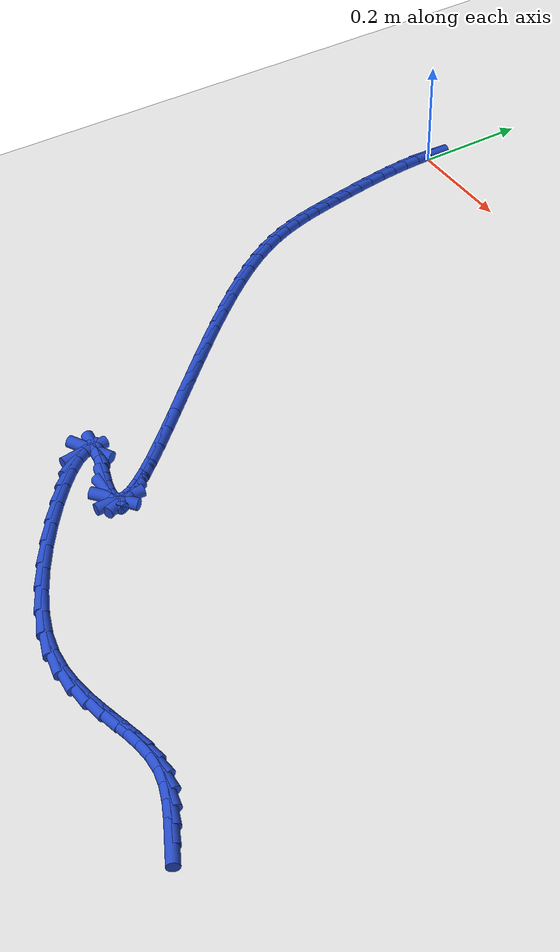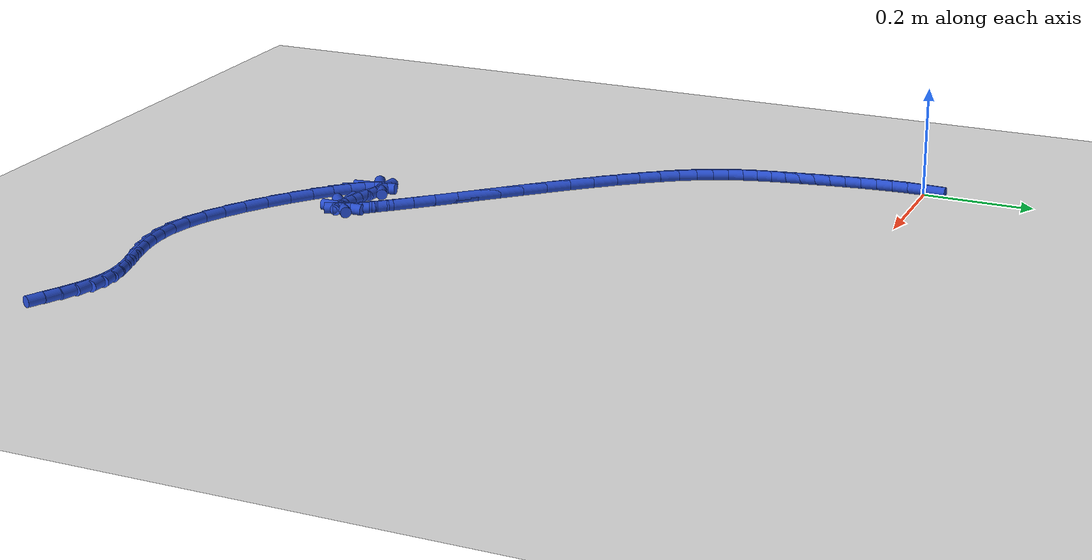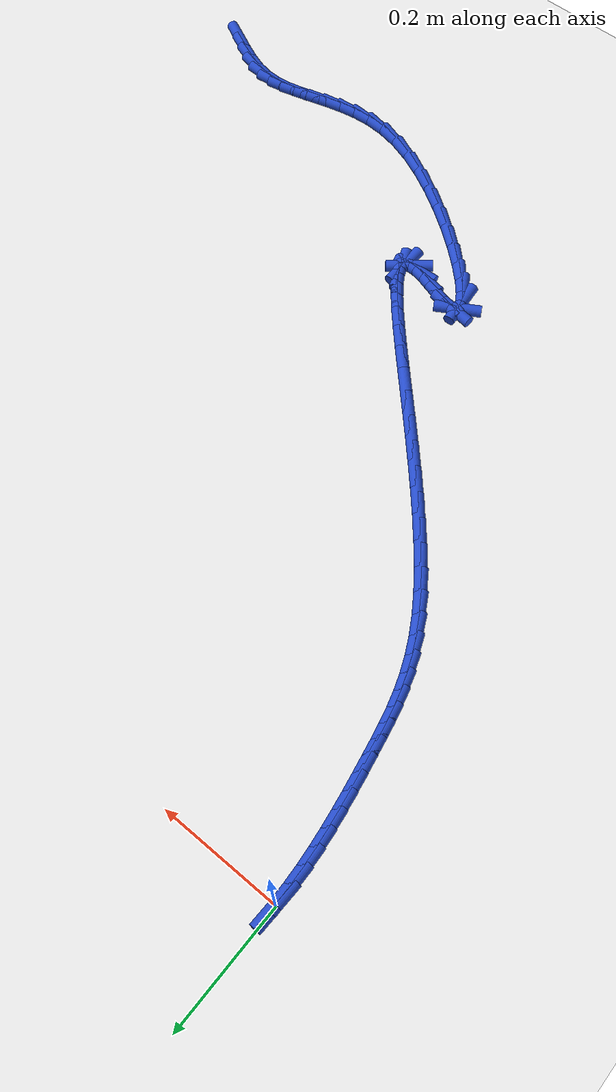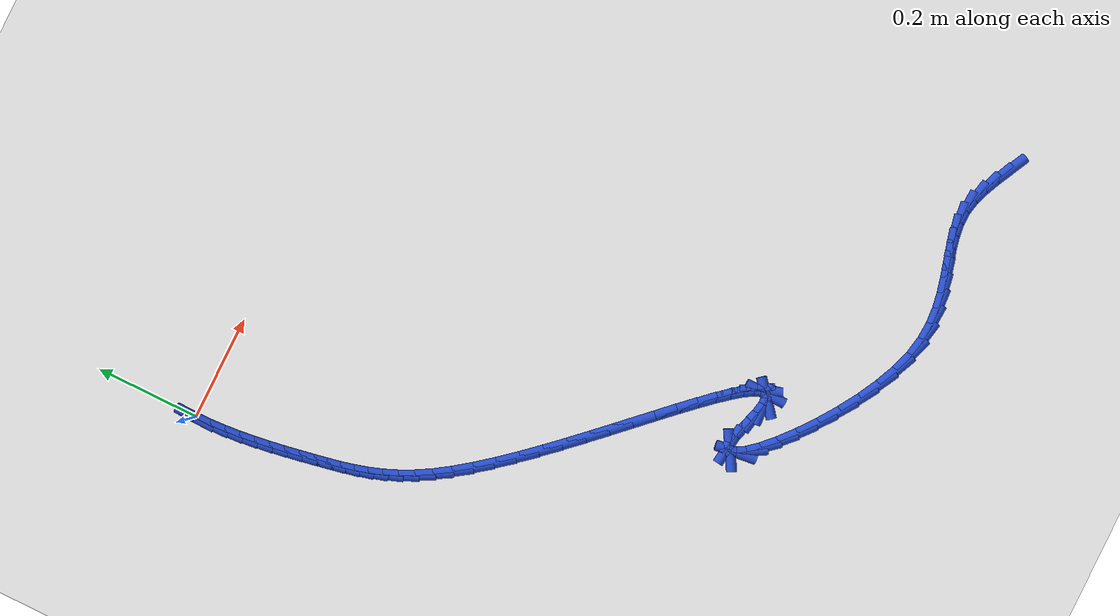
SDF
<sdf version="1.6">
 <world name="default">
  <model name="ground_plane">
   <static>1</static>
   <link name="link">
    <collision name="collision">
     <geometry><plane><normal>0 0 1</normal><size>100 100</size></plane></geometry>
     <surface><friction><ode><mu>100</mu><mu2>50</mu2></ode></friction></surface>
    </collision>
    <visual name="visual">
     <cast_shadows>0</cast_shadows>
     <geometry><plane><normal>0 0 1</normal><size>100 100</size></plane></geometry>
     <material>
      <script><uri>file://media/materials/scripts/gazebo.material</uri><name>Gazebo/WhiteGlow</name></script>
     </material>
    </visual>
   </link>
  </model>
  <model name="line">
   <link name="link_0">
    <pose>8.673617379884035e-18 -6.938893903907228e-18 0.01 0 1.57 1.5409718841521143</pose>
    <collision name="collision">
     <geometry><cylinder><radius>0.01</radius><length>0.08</length></cylinder></geometry>
    </collision>
    <visual name="visual">
     <material>
      <script><name>Gazebo/Blue</name><uri>file://media/materials/scripts/gazebo.material</uri></script>
     </material>
     <geometry><cylinder><radius>0.01</radius><length>0.08</length></cylinder></geometry>
    </visual>
   </link>
   <link name="link_204">
    <pose>1.0706540833297433 -1.1455623168918463 0.01 0 1.57 -0.4642319237247657</pose>
    <collision name="collision">
     <geometry><cylinder><radius>0.01</radius><length>0.08</length></cylinder></geometry>
    </collision>
    <visual name="visual">
     <material>
      <script><name>Gazebo/Blue</name><uri>file://media/materials/scripts/gazebo.material</uri></script>
     </material>
     <geometry><cylinder><radius>0.01</radius><length>0.08</length></cylinder></geometry>
    </visual>
   </link>
   <link name="link_205">
    <pose>1.044580691470846 -1.1325065715613485 0.01 0 1.57 -0.4228738818961201</pose>
    <collision name="collision">
     <geometry><cylinder><radius>0.01</radius><length>0.08</length></cylinder></geometry>
    </collision>
    <visual name="visual">
     <material>
      <script><name>Gazebo/Blue</name><uri>file://media/materials/scripts/gazebo.material</uri></script>
     </material>
     <geometry><cylinder><radius>0.01</radius><length>0.08</length></cylinder></geometry>
    </visual>
   </link>
   <link name="link_206">
    <pose>1.0190140620957948 -1.1210009748196406 0.01 0 1.57 -0.33830101584776473</pose>
    <collision name="collision">
     <geometry><cylinder><radius>0.01</radius><length>0.08</length></cylinder></geometry>
    </collision>
    <visual name="visual">
     <material>
      <script><name>Gazebo/Blue</name><uri>file://media/materials/scripts/gazebo.material</uri></script>
     </material>
     <geometry><cylinder><radius>0.01</radius><length>0.08</length></cylinder></geometry>
    </visual>
   </link>
   <link name="link_207">
    <pose>0.9938486394346454 -1.1121471135852172 0.01 0 1.57 -0.20228904150804633</pose>
    <collision name="collision">
     <geometry><cylinder><radius>0.01</radius><length>0.08</length></cylinder></geometry>
    </collision>
    <visual name="visual">
     <material>
      <script><name>Gazebo/Blue</name><uri>file://media/materials/scripts/gazebo.material</uri></script>
     </material>
     <geometry><cylinder><radius>0.01</radius><length>0.08</length></cylinder></geometry>
    </visual>
   </link>
   <link name="link_208">
    <pose>0.9689788595536176 -1.1070464647997955 0.01 0 1.57 -0.027776827403658392</pose>
    <collision name="collision">
     <geometry><cylinder><radius>0.01</radius><length>0.08</length></cylinder></geometry>
    </collision>
    <visual name="visual">
     <material>
      <script><name>Gazebo/Blue</name><uri>file://media/materials/scripts/gazebo.material</uri></script>
     </material>
     <geometry><cylinder><radius>0.01</radius><length>0.08</length></cylinder></geometry>
    </visual>
   </link>
   <link name="link_209">
    <pose>0.9442664480470282 -1.1063598558166883 0.01 0 1.57 0.1182348919394811</pose>
    <collision name="collision">
     <geometry><cylinder><radius>0.01</radius><length>0.08</length></cylinder></geometry>
    </collision>
    <visual name="visual">
     <material>
      <script><name>Gazebo/Blue</name><uri>file://media/materials/scripts/gazebo.material</uri></script>
     </material>
     <geometry><cylinder><radius>0.01</radius><length>0.08</length></cylinder></geometry>
    </visual>
   </link>
   <link name="link_210">
    <pose>0.9194660690442659 -1.1093058666685658 0.01 0 1.57 0.21535118865208316</pose>
    <collision name="collision">
     <geometry><cylinder><radius>0.01</radius><length>0.08</length></cylinder></geometry>
    </collision>
    <visual name="visual">
     <material>
      <script><name>Gazebo/Blue</name><uri>file://media/materials/scripts/gazebo.material</uri></script>
     </material>
     <geometry><cylinder><radius>0.01</radius><length>0.08</length></cylinder></geometry>
    </visual>
   </link>
   <link name="link_211">
    <pose>0.8943105174099861 -1.1148084719623068 0.01 0 1.57 0.26454808055251183</pose>
    <collision name="collision">
     <geometry><cylinder><radius>0.01</radius><length>0.08</length></cylinder></geometry>
    </collision>
    <visual name="visual">
     <material>
      <script><name>Gazebo/Blue</name><uri>file://media/materials/scripts/gazebo.material</uri></script>
     </material>
     <geometry><cylinder><radius>0.01</radius><length>0.08</length></cylinder></geometry>
    </visual>
   </link>
   <link name="link_212">
    <pose>0.868532588008847 -1.1217916463047883 0.01 0 1.57 0.2702530988167434</pose>
    <collision name="collision">
     <geometry><cylinder><radius>0.01</radius><length>0.08</length></cylinder></geometry>
    </collision>
    <visual name="visual">
     <material>
      <script><name>Gazebo/Blue</name><uri>file://media/materials/scripts/gazebo.material</uri></script>
     </material>
     <geometry><cylinder><radius>0.01</radius><length>0.08</length></cylinder></geometry>
    </visual>
   </link>
   <link name="link_213">
    <pose>0.8418650757055044 -1.129179364302891 0.01 0 1.57 0.2368496382804075</pose>
    <collision name="collision">
     <geometry><cylinder><radius>0.01</radius><length>0.08</length></cylinder></geometry>
    </collision>
    <visual name="visual">
     <material>
      <script><name>Gazebo/Blue</name><uri>file://media/materials/scripts/gazebo.material</uri></script>
     </material>
     <geometry><cylinder><radius>0.01</radius><length>0.08</length></cylinder></geometry>
    </visual>
   </link>
   <link name="link_214">
    <pose>0.8140407753646165 -1.1358956005634906 0.01 0 1.57 0.1682744900503131</pose>
    <collision name="collision">
     <geometry><cylinder><radius>0.01</radius><length>0.08</length></cylinder></geometry>
    </collision>
    <visual name="visual">
     <material>
      <script><name>Gazebo/Blue</name><uri>file://media/materials/scripts/gazebo.material</uri></script>
     </material>
     <geometry><cylinder><radius>0.01</radius><length>0.08</length></cylinder></geometry>
    </visual>
   </link>
   <link name="link_215">
    <pose>0.7847924818508395 -1.140864329693467 0.01 0 1.57 0.06922443694624249</pose>
    <collision name="collision">
     <geometry><cylinder><radius>0.01</radius><length>0.08</length></cylinder></geometry>
    </collision>
    <visual name="visual">
     <material>
      <script><name>Gazebo/Blue</name><uri>file://media/materials/scripts/gazebo.material</uri></script>
     </material>
     <geometry><cylinder><radius>0.01</radius><length>0.08</length></cylinder></geometry>
    </visual>
   </link>
   <link name="link_216">
    <pose>0.7538529900288291 -1.143009526299698 0.01 0 1.57 -0.05327699842313205</pose>
    <collision name="collision">
     <geometry><cylinder><radius>0.01</radius><length>0.08</length></cylinder></geometry>
    </collision>
    <visual name="visual">
     <material>
      <script><name>Gazebo/Blue</name><uri>file://media/materials/scripts/gazebo.material</uri></script>
     </material>
     <geometry><cylinder><radius>0.01</radius><length>0.08</length></cylinder></geometry>
    </visual>
   </link>
   <link name="link_217">
    <pose>0.7209550947632444 -1.1412551649890612 0.01 0 1.57 -0.18931346870552138</pose>
    <collision name="collision">
     <geometry><cylinder><radius>0.01</radius><length>0.08</length></cylinder></geometry>
    </collision>
    <visual name="visual">
     <material>
      <script><name>Gazebo/Blue</name><uri>file://media/materials/scripts/gazebo.material</uri></script>
     </material>
     <geometry><cylinder><radius>0.01</radius><length>0.08</length></cylinder></geometry>
    </visual>
   </link>
   <link name="link_218">
    <pose>0.6858315909430144 -1.134525220407173 0.01 0 1.57 -0.32052352537030293</pose>
    <collision name="collision">
     <geometry><cylinder><radius>0.01</radius><length>0.08</length></cylinder></geometry>
    </collision>
    <visual name="visual">
     <material>
      <script><name>Gazebo/Blue</name><uri>file://media/materials/scripts/gazebo.material</uri></script>
     </material>
     <geometry><cylinder><radius>0.01</radius><length>0.08</length></cylinder></geometry>
    </visual>
   </link>
   <link name="link_219">
    <pose>0.648447933904678 -1.1221149481736779 0.01 0 1.57 -0.4204650354942091</pose>
    <collision name="collision">
     <geometry><cylinder><radius>0.01</radius><length>0.08</length></cylinder></geometry>
    </collision>
    <visual name="visual">
     <material>
      <script><name>Gazebo/Blue</name><uri>file://media/materials/scripts/gazebo.material</uri></script>
     </material>
     <geometry><cylinder><radius>0.01</radius><length>0.08</length></cylinder></geometry>
    </visual>
   </link>
   <link name="link_220">
    <pose>0.609687108644149 -1.1047838033849318 0.01 0 1.57 -0.4962452115851654</pose>
    <collision name="collision">
     <geometry><cylinder><radius>0.01</radius><length>0.08</length></cylinder></geometry>
    </collision>
    <visual name="visual">
     <material>
      <script><name>Gazebo/Blue</name><uri>file://media/materials/scripts/gazebo.material</uri></script>
     </material>
     <geometry><cylinder><radius>0.01</radius><length>0.08</length></cylinder></geometry>
    </visual>
   </link>
   <link name="link_221">
    <pose>0.5706582505945622 -1.083652133396682 0.01 0 1.57 -0.5575535435597293</pose>
    <collision name="collision">
     <geometry><cylinder><radius>0.01</radius><length>0.08</length></cylinder></geometry>
    </collision>
    <visual name="visual">
     <material>
      <script><name>Gazebo/Blue</name><uri>file://media/materials/scripts/gazebo.material</uri></script>
     </material>
     <geometry><cylinder><radius>0.01</radius><length>0.08</length></cylinder></geometry>
    </visual>
   </link>
   <link name="link_222">
    <pose>0.5324704951890482 -1.0598402855646736 0.01 0 1.57 -0.6108262684942622</pose>
    <collision name="collision">
     <geometry><cylinder><radius>0.01</radius><length>0.08</length></cylinder></geometry>
    </collision>
    <visual name="visual">
     <material>
      <script><name>Gazebo/Blue</name><uri>file://media/materials/scripts/gazebo.material</uri></script>
     </material>
     <geometry><cylinder><radius>0.01</radius><length>0.08</length></cylinder></geometry>
    </visual>
   </link>
   <link name="link_223">
    <pose>0.49623297786074194 -1.0344686072446547 0.01 0 1.57 -0.6611546823411534</pose>
    <collision name="collision">
     <geometry><cylinder><radius>0.01</radius><length>0.08</length></cylinder></geometry>
    </collision>
    <visual name="visual">
     <material>
      <script><name>Gazebo/Blue</name><uri>file://media/materials/scripts/gazebo.material</uri></script>
     </material>
     <geometry><cylinder><radius>0.01</radius><length>0.08</length></cylinder></geometry>
    </visual>
   </link>
   <link name="link_224">
    <pose>0.463054834042774 -1.00865744579237 0.01 0 1.57 -0.7138665107313322</pose>
    <collision name="collision">
     <geometry><cylinder><radius>0.01</radius><length>0.08</length></cylinder></geometry>
    </collision>
    <visual name="visual">
     <material>
      <script><name>Gazebo/Blue</name><uri>file://media/materials/scripts/gazebo.material</uri></script>
     </material>
     <geometry><cylinder><radius>0.01</radius><length>0.08</length></cylinder></geometry>
    </visual>
   </link>
   <link name="link_225">
    <pose>0.43404519916827883 -0.9835271485635673 0.01 0 1.57 -0.7768370543464801</pose>
    <collision name="collision">
     <geometry><cylinder><radius>0.01</radius><length>0.08</length></cylinder></geometry>
    </collision>
    <visual name="visual">
     <material>
      <script><name>Gazebo/Blue</name><uri>file://media/materials/scripts/gazebo.material</uri></script>
     </material>
     <geometry><cylinder><radius>0.01</radius><length>0.08</length></cylinder></geometry>
    </visual>
   </link>
   <link name="link_226">
    <pose>0.4103132086703884 -0.9601980629139923 0.01 0 1.57 -0.8663360317413118</pose>
    <collision name="collision">
     <geometry><cylinder><radius>0.01</radius><length>0.08</length></cylinder></geometry>
    </collision>
    <visual name="visual">
     <material>
      <script><name>Gazebo/Blue</name><uri>file://media/materials/scripts/gazebo.material</uri></script>
     </material>
     <geometry><cylinder><radius>0.01</radius><length>0.08</length></cylinder></geometry>
    </visual>
   </link>
   <link name="link_227">
    <pose>0.39296799798223464 -0.9397905361993909 0.01 0 1.57 -1.029033486125256</pose>
    <collision name="collision">
     <geometry><cylinder><radius>0.01</radius><length>0.08</length></cylinder></geometry>
    </collision>
    <visual name="visual">
     <material>
      <script><name>Gazebo/Blue</name><uri>file://media/materials/scripts/gazebo.material</uri></script>
     </material>
     <geometry><cylinder><radius>0.01</radius><length>0.08</length></cylinder></geometry>
    </visual>
   </link>
   <link name="link_228">
    <pose>0.38311870253695157 -0.9234249157755104 0.01 0 1.57 -1.4601896946669406</pose>
    <collision name="collision">
     <geometry><cylinder><radius>0.01</radius><length>0.08</length></cylinder></geometry>
    </collision>
    <visual name="visual">
     <material>
      <script><name>Gazebo/Blue</name><uri>file://media/materials/scripts/gazebo.material</uri></script>
     </material>
     <geometry><cylinder><radius>0.01</radius><length>0.08</length></cylinder></geometry>
    </visual>
   </link>
   <link name="link_229">
    <pose>0.3818744577676711 -0.9122215489980967 0.01 0 1.57 0.5263079022727691</pose>
    <collision name="collision">
     <geometry><cylinder><radius>0.01</radius><length>0.08</length></cylinder></geometry>
    </collision>
    <visual name="visual">
     <material>
      <script><name>Gazebo/Blue</name><uri>file://media/materials/scripts/gazebo.material</uri></script>
     </material>
     <geometry><cylinder><radius>0.01</radius><length>0.08</length></cylinder></geometry>
    </visual>
   </link>
   <link name="link_230">
    <pose>0.39034439910752616 -0.9073007832228964 0.01 0 1.57 -0.12695476237906597</pose>
    <collision name="collision">
     <geometry><cylinder><radius>0.01</radius><length>0.08</length></cylinder></geometry>
    </collision>
    <visual name="visual">
     <material>
      <script><name>Gazebo/Blue</name><uri>file://media/materials/scripts/gazebo.material</uri></script>
     </material>
     <geometry><cylinder><radius>0.01</radius><length>0.08</length></cylinder></geometry>
    </visual>
   </link>
   <link name="link_231">
    <pose>0.4096044559877209 -0.9097591610252957 0.01 0 1.57 -0.2966005531450414</pose>
    <collision name="collision">
     <geometry><cylinder><radius>0.01</radius><length>0.08</length></cylinder></geometry>
    </collision>
    <visual name="visual">
     <material>
      <script><name>Gazebo/Blue</name><uri>file://media/materials/scripts/gazebo.material</uri></script>
     </material>
     <geometry><cylinder><radius>0.01</radius><length>0.08</length></cylinder></geometry>
    </visual>
   </link>
   <link name="link_232">
    <pose>0.4372742887122776 -0.9182154883469865 0.01 0 1.57 -0.30112780114378235</pose>
    <collision name="collision">
     <geometry><cylinder><radius>0.01</radius><length>0.08</length></cylinder></geometry>
    </collision>
    <visual name="visual">
     <material>
      <script><name>Gazebo/Blue</name><uri>file://media/materials/scripts/gazebo.material</uri></script>
     </material>
     <geometry><cylinder><radius>0.01</radius><length>0.08</length></cylinder></geometry>
    </visual>
   </link>
   <link name="link_233">
    <pose>0.4645586916355789 -0.9266892708618514 0.01 0 1.57 -0.19305845136438265</pose>
    <collision name="collision">
     <geometry><cylinder><radius>0.01</radius><length>0.08</length></cylinder></geometry>
    </collision>
    <visual name="visual">
     <material>
      <script><name>Gazebo/Blue</name><uri>file://media/materials/scripts/gazebo.material</uri></script>
     </material>
     <geometry><cylinder><radius>0.01</radius><length>0.08</length></cylinder></geometry>
    </visual>
   </link>
   <link name="link_234">
    <pose>0.48485623962167546 -0.9306573052587689 0.01 0 1.57 0.05994871519408383</pose>
    <collision name="collision">
     <geometry><cylinder><radius>0.01</radius><length>0.08</length></cylinder></geometry>
    </collision>
    <visual name="visual">
     <material>
      <script><name>Gazebo/Blue</name><uri>file://media/materials/scripts/gazebo.material</uri></script>
     </material>
     <geometry><cylinder><radius>0.01</radius><length>0.08</length></cylinder></geometry>
    </visual>
   </link>
   <link name="link_235">
    <pose>0.49788570229031676 -0.9298752686472246 0.01 0 1.57 0.6900211152007061</pose>
    <collision name="collision">
     <geometry><cylinder><radius>0.01</radius><length>0.08</length></cylinder></geometry>
    </collision>
    <visual name="visual">
     <material>
      <script><name>Gazebo/Blue</name><uri>file://media/materials/scripts/gazebo.material</uri></script>
     </material>
     <geometry><cylinder><radius>0.01</radius><length>0.08</length></cylinder></geometry>
    </visual>
   </link>
   <link name="link_236">
    <pose>0.5042000360093922 -0.9246635968952098 0.01 0 1.57 1.5544730001162064</pose>
    <collision name="collision">
     <geometry><cylinder><radius>0.01</radius><length>0.08</length></cylinder></geometry>
    </collision>
    <visual name="visual">
     <material>
      <script><name>Gazebo/Blue</name><uri>file://media/materials/scripts/gazebo.material</uri></script>
     </material>
     <geometry><cylinder><radius>0.01</radius><length>0.08</length></cylinder></geometry>
    </visual>
   </link>
   <link name="link_237">
    <pose>0.5043521971467905 -0.9153427258707164 0.01 0 1.57 -1.1763492532491382</pose>
    <collision name="collision">
     <geometry><cylinder><radius>0.01</radius><length>0.08</length></cylinder></geometry>
    </collision>
    <visual name="visual">
     <material>
      <script><name>Gazebo/Blue</name><uri>file://media/materials/scripts/gazebo.material</uri></script>
     </material>
     <geometry><cylinder><radius>0.01</radius><length>0.08</length></cylinder></geometry>
    </visual>
   </link>
   <link name="link_238">
    <pose>0.49889514207040064 -0.9022330914417348 0.01 0 1.57 -1.0056270548196067</pose>
    <collision name="collision">
     <geometry><cylinder><radius>0.01</radius><length>0.08</length></cylinder></geometry>
    </collision>
    <visual name="visual">
     <material>
      <script><name>Gazebo/Blue</name><uri>file://media/materials/scripts/gazebo.material</uri></script>
     </material>
     <geometry><cylinder><radius>0.01</radius><length>0.08</length></cylinder></geometry>
    </visual>
   </link>
   <link name="link_239">
    <pose>0.48838182714811257 -0.8856551294762582 0.01 0 1.57 -0.9201239875598572</pose>
    <collision name="collision">
     <geometry><cylinder><radius>0.01</radius><length>0.08</length></cylinder></geometry>
    </collision>
    <visual name="visual">
     <material>
      <script><name>Gazebo/Blue</name><uri>file://media/materials/scripts/gazebo.material</uri></script>
     </material>
     <geometry><cylinder><radius>0.01</radius><length>0.08</length></cylinder></geometry>
    </visual>
   </link>
   <link name="link_240">
    <pose>0.47336520874781446 -0.8659292758422765 0.01 0 1.57 -0.8715600369598075</pose>
    <collision name="collision">
     <geometry><cylinder><radius>0.01</radius><length>0.08</length></cylinder></geometry>
    </collision>
    <visual name="visual">
     <material>
      <script><name>Gazebo/Blue</name><uri>file://media/materials/scripts/gazebo.material</uri></script>
     </material>
     <geometry><cylinder><radius>0.01</radius><length>0.08</length></cylinder></geometry>
    </visual>
   </link>
   <link name="link_241">
    <pose>0.4543982432373965 -0.8433759664077825 0.01 0 1.57 -0.8421845092491237</pose>
    <collision name="collision">
     <geometry><cylinder><radius>0.01</radius><length>0.08</length></cylinder></geometry>
    </collision>
    <visual name="visual">
     <material>
      <script><name>Gazebo/Blue</name><uri>file://media/materials/scripts/gazebo.material</uri></script>
     </material>
     <geometry><cylinder><radius>0.01</radius><length>0.08</length></cylinder></geometry>
    </visual>
   </link>
   <link name="link_242">
    <pose>0.43203388698474676 -0.8183156370407664 0.01 0 1.57 -0.8242327983363771</pose>
    <collision name="collision">
     <geometry><cylinder><radius>0.01</radius><length>0.08</length></cylinder></geometry>
    </collision>
    <visual name="visual">
     <material>
      <script><name>Gazebo/Blue</name><uri>file://media/materials/scripts/gazebo.material</uri></script>
     </material>
     <geometry><cylinder><radius>0.01</radius><length>0.08</length></cylinder></geometry>
    </visual>
   </link>
   <link name="link_243">
    <pose>0.4068250963577558 -0.7910687236092213 0.01 0 1.57 -0.8138783271246006</pose>
    <collision name="collision">
     <geometry><cylinder><radius>0.01</radius><length>0.08</length></cylinder></geometry>
    </collision>
    <visual name="visual">
     <material>
      <script><name>Gazebo/Blue</name><uri>file://media/materials/scripts/gazebo.material</uri></script>
     </material>
     <geometry><cylinder><radius>0.01</radius><length>0.08</length></cylinder></geometry>
    </visual>
   </link>
   <link name="link_244">
    <pose>0.37932482772431136 -0.7619556619811372 0.01 0 1.57 -0.809100592284232</pose>
    <collision name="collision">
     <geometry><cylinder><radius>0.01</radius><length>0.08</length></cylinder></geometry>
    </collision>
    <visual name="visual">
     <material>
      <script><name>Gazebo/Blue</name><uri>file://media/materials/scripts/gazebo.material</uri></script>
     </material>
     <geometry><cylinder><radius>0.01</radius><length>0.08</length></cylinder></geometry>
    </visual>
   </link>
   <link name="link_245">
    <pose>0.350086037452304 -0.7312968880245069 0.01 0 1.57 -0.8088208124405839</pose>
    <collision name="collision">
     <geometry><cylinder><radius>0.01</radius><length>0.08</length></cylinder></geometry>
    </collision>
    <visual name="visual">
     <material>
      <script><name>Gazebo/Blue</name><uri>file://media/materials/scripts/gazebo.material</uri></script>
     </material>
     <geometry><cylinder><radius>0.01</radius><length>0.08</length></cylinder></geometry>
    </visual>
   </link>
   <link name="link_246">
    <pose>0.31966168190962235 -0.6994128376073214 0.01 0 1.57 -0.8125181999689776</pose>
    <collision name="collision">
     <geometry><cylinder><radius>0.01</radius><length>0.08</length></cylinder></geometry>
    </collision>
    <visual name="visual">
     <material>
      <script><name>Gazebo/Blue</name><uri>file://media/materials/scripts/gazebo.material</uri></script>
     </material>
     <geometry><cylinder><radius>0.01</radius><length>0.08</length></cylinder></geometry>
    </visual>
   </link>
   <link name="link_247">
    <pose>0.28860471746415445 -0.6666239465975712 0.01 0 1.57 -0.8200561413777359</pose>
    <collision name="collision">
     <geometry><cylinder><radius>0.01</radius><length>0.08</length></cylinder></geometry>
    </collision>
    <visual name="visual">
     <material>
      <script><name>Gazebo/Blue</name><uri>file://media/materials/scripts/gazebo.material</uri></script>
     </material>
     <geometry><cylinder><radius>0.01</radius><length>0.08</length></cylinder></geometry>
    </visual>
   </link>
   <link name="link_248">
    <pose>0.2574681004837913 -0.6332506508632496 0.01 0 1.57 -0.8316160000851509</pose>
    <collision name="collision">
     <geometry><cylinder><radius>0.01</radius><length>0.08</length></cylinder></geometry>
    </collision>
    <visual name="visual">
     <material>
      <script><name>Gazebo/Blue</name><uri>file://media/materials/scripts/gazebo.material</uri></script>
     </material>
     <geometry><cylinder><radius>0.01</radius><length>0.08</length></cylinder></geometry>
    </visual>
   </link>
   <link name="link_249">
    <pose>0.22680478733642045 -0.5996133862723465 0.01 0 1.57 -0.8477008290284296</pose>
    <collision name="collision">
     <geometry><cylinder><radius>0.01</radius><length>0.08</length></cylinder></geometry>
    </collision>
    <visual name="visual">
     <material>
      <script><name>Gazebo/Blue</name><uri>file://media/materials/scripts/gazebo.material</uri></script>
     </material>
     <geometry><cylinder><radius>0.01</radius><length>0.08</length></cylinder></geometry>
    </visual>
   </link>
   <link name="link_250">
    <pose>0.19716773438993276 -0.566032588692855 0.01 0 1.57 -0.8692026094590409</pose>
    <collision name="collision">
     <geometry><cylinder><radius>0.01</radius><length>0.08</length></cylinder></geometry>
    </collision>
    <visual name="visual">
     <material>
      <script><name>Gazebo/Blue</name><uri>file://media/materials/scripts/gazebo.material</uri></script>
     </material>
     <geometry><cylinder><radius>0.01</radius><length>0.08</length></cylinder></geometry>
    </visual>
   </link>
   <link name="link_251">
    <pose>0.16910989801221574 -0.5328286939927648 0.01 0 1.57 -0.8975499501292011</pose>
    <collision name="collision">
     <geometry><cylinder><radius>0.01</radius><length>0.08</length></cylinder></geometry>
    </collision>
    <visual name="visual">
     <material>
      <script><name>Gazebo/Blue</name><uri>file://media/materials/scripts/gazebo.material</uri></script>
     </material>
     <geometry><cylinder><radius>0.01</radius><length>0.08</length></cylinder></geometry>
    </visual>
   </link>
   <link name="link_252">
    <pose>0.14318423457116 -0.5003221380400693 0.01 0 1.57 -0.9349822733542558</pose>
    <collision name="collision">
     <geometry><cylinder><radius>0.01</radius><length>0.08</length></cylinder></geometry>
    </collision>
    <visual name="visual">
     <material>
      <script><name>Gazebo/Blue</name><uri>file://media/materials/scripts/gazebo.material</uri></script>
     </material>
     <geometry><cylinder><radius>0.01</radius><length>0.08</length></cylinder></geometry>
    </visual>
   </link>
   <link name="link_253">
    <pose>0.11994370043465348 -0.4688333567027584 0.01 0 1.57 -0.9849540185109447</pose>
    <collision name="collision">
     <geometry><cylinder><radius>0.01</radius><length>0.08</length></cylinder></geometry>
    </collision>
    <visual name="visual">
     <material>
      <script><name>Gazebo/Blue</name><uri>file://media/materials/scripts/gazebo.material</uri></script>
     </material>
     <geometry><cylinder><radius>0.01</radius><length>0.08</length></cylinder></geometry>
    </visual>
   </link>
   <link name="link_254">
    <pose>0.09993463193976522 -0.4386788141721696 0.01 0 1.57 -1.0466728409601813</pose>
    <collision name="collision">
     <geometry><cylinder><radius>0.01</radius><length>0.08</length></cylinder></geometry>
    </collision>
    <visual name="visual">
     <material>
      <script><name>Gazebo/Blue</name><uri>file://media/materials/scripts/gazebo.material</uri></script>
     </material>
     <geometry><cylinder><radius>0.01</radius><length>0.08</length></cylinder></geometry>
    </visual>
   </link>
   <link name="link_255">
    <pose>0.08332770604040307 -0.40994959840760103 0.01 0 1.57 -1.1121878496065656</pose>
    <collision name="collision">
     <geometry><cylinder><radius>0.01</radius><length>0.08</length></cylinder></geometry>
    </collision>
    <visual name="visual">
     <material>
      <script><name>Gazebo/Blue</name><uri>file://media/materials/scripts/gazebo.material</uri></script>
     </material>
     <geometry><cylinder><radius>0.01</radius><length>0.08</length></cylinder></geometry>
    </visual>
   </link>
   <link name="link_256">
    <pose>0.06972338791938038 -0.382394699749623 0.01 0 1.57 -1.1779083431837105</pose>
    <collision name="collision">
     <geometry><cylinder><radius>0.01</radius><length>0.08</length></cylinder></geometry>
    </collision>
    <visual name="visual">
     <material>
      <script><name>Gazebo/Blue</name><uri>file://media/materials/scripts/gazebo.material</uri></script>
     </material>
     <geometry><cylinder><radius>0.01</radius><length>0.08</length></cylinder></geometry>
    </visual>
   </link>
   <link name="link_257">
    <pose>0.05867447526781418 -0.35573451050518456 0.01 0 1.57 -1.240122296660199</pose>
    <collision name="collision">
     <geometry><cylinder><radius>0.01</radius><length>0.08</length></cylinder></geometry>
    </collision>
    <visual name="visual">
     <material>
      <script><name>Gazebo/Blue</name><uri>file://media/materials/scripts/gazebo.material</uri></script>
     </material>
     <geometry><cylinder><radius>0.01</radius><length>0.08</length></cylinder></geometry>
    </visual>
   </link>
   <link name="link_258">
    <pose>0.0497337657768217 -0.3296894229812345 0.01 0 1.57 -1.2948676839931783</pose>
    <collision name="collision">
     <geometry><cylinder><radius>0.01</radius><length>0.08</length></cylinder></geometry>
    </collision>
    <visual name="visual">
     <material>
      <script><name>Gazebo/Blue</name><uri>file://media/materials/scripts/gazebo.material</uri></script>
     </material>
     <geometry><cylinder><radius>0.01</radius><length>0.08</length></cylinder></geometry>
    </visual>
   </link>
   <link name="link_259">
    <pose>0.04245405713752098 -0.3039798294847244 0.01 0 1.57 -1.3386073354871726</pose>
    <collision name="collision">
     <geometry><cylinder><radius>0.01</radius><length>0.08</length></cylinder></geometry>
    </collision>
    <visual name="visual">
     <material>
      <script><name>Gazebo/Blue</name><uri>file://media/materials/scripts/gazebo.material</uri></script>
     </material>
     <geometry><cylinder><radius>0.01</radius><length>0.08</length></cylinder></geometry>
    </visual>
   </link>
   <link name="link_260">
    <pose>0.03638814704102904 -0.27832612232260234 0.01 0 1.57 -1.3688038947188759</pose>
    <collision name="collision">
     <geometry><cylinder><radius>0.01</radius><length>0.08</length></cylinder></geometry>
    </collision>
    <visual name="visual">
     <material>
      <script><name>Gazebo/Blue</name><uri>file://media/materials/scripts/gazebo.material</uri></script>
     </material>
     <geometry><cylinder><radius>0.01</radius><length>0.08</length></cylinder></geometry>
    </visual>
   </link>
   <link name="link_261">
    <pose>0.03108883317846376 -0.2524486938018198 0.01 0 1.57 -1.3842372167997115</pose>
    <collision name="collision">
     <geometry><cylinder><radius>0.01</radius><length>0.08</length></cylinder></geometry>
    </collision>
    <visual name="visual">
     <material>
      <script><name>Gazebo/Blue</name><uri>file://media/materials/scripts/gazebo.material</uri></script>
     </material>
     <geometry><cylinder><radius>0.01</radius><length>0.08</length></cylinder></geometry>
    </visual>
   </link>
   <link name="link_262">
    <pose>0.026109421959088105 -0.22606826979154246 0.01 0 1.57 -1.3900648722373392</pose>
    <collision name="collision">
     <geometry><cylinder><radius>0.01</radius><length>0.08</length></cylinder></geometry>
    </collision>
    <visual name="visual">
     <material>
      <script><name>Gazebo/Blue</name><uri>file://media/materials/scripts/gazebo.material</uri></script>
     </material>
     <geometry><cylinder><radius>0.01</radius><length>0.08</length></cylinder></geometry>
    </visual>
   </link>
   <link name="link_263">
    <pose>0.021165560793617456 -0.1990120217928113 0.01 0 1.57 -1.398922410363703</pose>
    <collision name="collision">
     <geometry><cylinder><radius>0.01</radius><length>0.08</length></cylinder></geometry>
    </collision>
    <visual name="visual">
     <material>
      <script><name>Gazebo/Blue</name><uri>file://media/materials/scripts/gazebo.material</uri></script>
     </material>
     <geometry><cylinder><radius>0.01</radius><length>0.08</length></cylinder></geometry>
    </visual>
   </link>
   <link name="link_264">
    <pose>0.016366437017428532 -0.17136516213167213 0.01 0 1.57 -1.412539874854275</pose>
    <collision name="collision">
     <geometry><cylinder><radius>0.01</radius><length>0.08</length></cylinder></geometry>
    </collision>
    <visual name="visual">
     <material>
      <script><name>Gazebo/Blue</name><uri>file://media/materials/scripts/gazebo.material</uri></script>
     </material>
     <geometry><cylinder><radius>0.01</radius><length>0.08</length></cylinder></geometry>
    </visual>
   </link>
   <link name="link_265">
    <pose>0.01187970813882136 -0.14325124153572857 0.01 0 1.57 -1.4309203222287532</pose>
    <collision name="collision">
     <geometry><cylinder><radius>0.01</radius><length>0.08</length></cylinder></geometry>
    </collision>
    <visual name="visual">
     <material>
      <script><name>Gazebo/Blue</name><uri>file://media/materials/scripts/gazebo.material</uri></script>
     </material>
     <geometry><cylinder><radius>0.01</radius><length>0.08</length></cylinder></geometry>
    </visual>
   </link>
   <link name="link_266">
    <pose>0.007873031666095407 -0.11479381073258099 0.01 0 1.57 -1.4541981688508028</pose>
    <collision name="collision">
     <geometry><cylinder><radius>0.01</radius><length>0.08</length></cylinder></geometry>
    </collision>
    <visual name="visual">
     <material>
      <script><name>Gazebo/Blue</name><uri>file://media/materials/scripts/gazebo.material</uri></script>
     </material>
     <geometry><cylinder><radius>0.01</radius><length>0.08</length></cylinder></geometry>
    </visual>
   </link>
   <link name="link_267">
    <pose>0.004514065107550646 -0.086116420449833 0.01 0 1.57 -1.4826256841774708</pose>
    <collision name="collision">
     <geometry><cylinder><radius>0.01</radius><length>0.08</length></cylinder></geometry>
    </collision>
    <visual name="visual">
     <material>
      <script><name>Gazebo/Blue</name><uri>file://media/materials/scripts/gazebo.material</uri></script>
     </material>
     <geometry><cylinder><radius>0.01</radius><length>0.08</length></cylinder></geometry>
    </visual>
   </link>
   <link name="link_268">
    <pose>0.0019704659714866748 -0.05734262141508567 0.01 0 1.57 -1.5165624082673754</pose>
    <collision name="collision">
     <geometry><cylinder><radius>0.01</radius><length>0.08</length></cylinder></geometry>
    </collision>
    <visual name="visual">
     <material>
      <script><name>Gazebo/Blue</name><uri>file://media/materials/scripts/gazebo.material</uri></script>
     </material>
     <geometry><cylinder><radius>0.01</radius><length>0.08</length></cylinder></geometry>
    </visual>
   </link>
   <link name="link_269">
    <pose>0.0004098917662031876 -0.028595964355940143 0.01 0 1.57 -1.5564634058156717</pose>
    <collision name="collision">
     <geometry><cylinder><radius>0.01</radius><length>0.08</length></cylinder></geometry>
    </collision>
    <visual name="visual">
     <material>
      <script><name>Gazebo/Blue</name><uri>file://media/materials/scripts/gazebo.material</uri></script>
     </material>
     <geometry><cylinder><radius>0.01</radius><length>0.08</length></cylinder></geometry>
    </visual>
   </link>
   <link name="link_270">
    <pose>1.3010426069826053e-17 -1.1796119636642288e-16 0.01 0 1.57 1.5387312973772627</pose>
    <collision name="collision">
     <geometry><cylinder><radius>0.01</radius><length>0.08</length></cylinder></geometry>
    </collision>
    <visual name="visual">
     <material>
      <script><name>Gazebo/Blue</name><uri>file://media/materials/scripts/gazebo.material</uri></script>
     </material>
     <geometry><cylinder><radius>0.01</radius><length>0.08</length></cylinder></geometry>
    </visual>
   </link>
  </model>
 </world>
</sdf>
